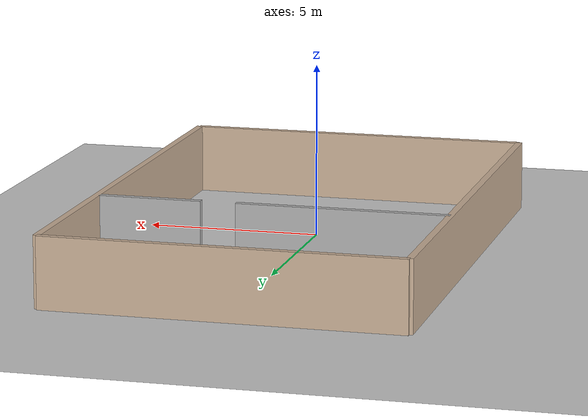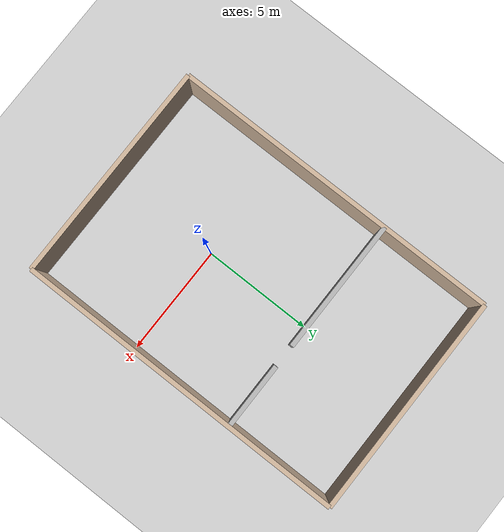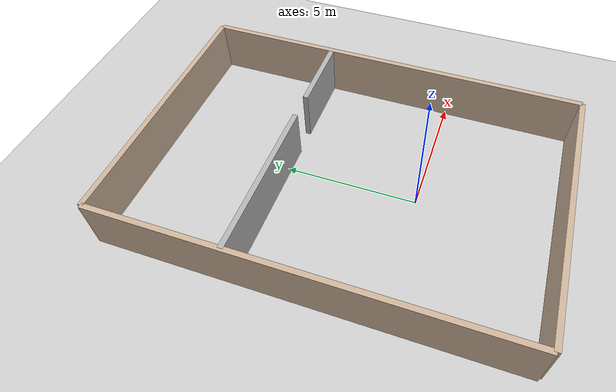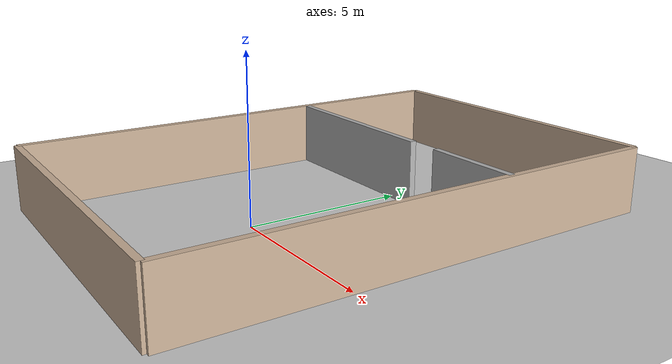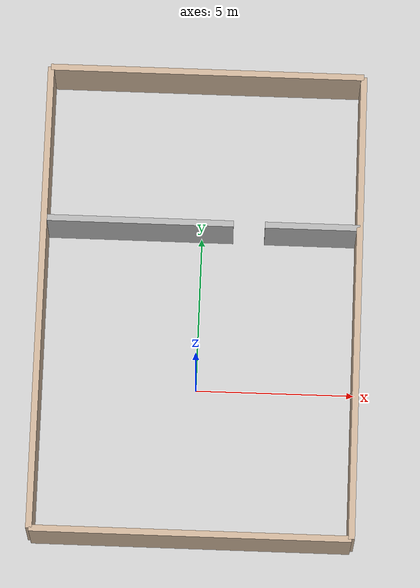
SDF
<?xml version="1.0" ?>
<sdf version="1.4">
  <world name="simple_office">
    <physics type="ode">
      <gravity>0 0 -9.81</gravity>
      <ode>
        <solver>
          <type>quick</type>
          <iters>20</iters>
          <sor>1.0</sor>
        </solver>
        <constraints>
          <cfm>0.0</cfm>
          <erp>0.2</erp>
          <contact_max_correcting_vel>100.0</contact_max_correcting_vel>
          <contact_surface_layer>0.0</contact_surface_layer>
        </constraints>
      </ode>
      <real_time_update_rate>1000</real_time_update_rate>
      <max_step_size>0.001</max_step_size>
    </physics>

    <!-- A global light source -->
    <include>
      <uri>model://sun</uri>
    </include>

    <!-- A ground plane -->
    <include>
      <uri>model://ground_plane</uri>
    </include>

    <!-- Outer walls -->
    <model name="wall_1_model">
      <pose>0 -5 1 0 0 0</pose>
      <static>true</static>
      <link name="wall_1_body">
        <inertial>
          <mass>1.0</mass>
          <inertia>
            <ixx>1.0</ixx>
            <ixy>0.0</ixy>
            <ixz>0.0</ixz>
            <iyy>1.0</iyy>
            <iyz>0.0</iyz>
            <izz>1.0</izz>
          </inertia>
        </inertial>
        <collision name="collision">
          <geometry>
            <box>
              <size>10 0.2 2</size>
            </box>
          </geometry>
        </collision>
        <visual name="visual">
          <geometry>
            <box>
              <size>10 0.2 2</size>
            </box>
          </geometry>
          <material>
            <ambient>0.8 0.7 0.6 1</ambient>
            <diffuse>0.8 0.7 0.6 1</diffuse>
          </material>
        </visual>
      </link>
    </model>

    <model name="wall_2_model">
      <pose>0 10 1 0 0 0</pose>
      <static>true</static>
      <link name="wall_2_body">
        <inertial>
          <mass>1.0</mass>
          <inertia>
            <ixx>1.0</ixx>
            <ixy>0.0</ixy>
            <ixz>0.0</ixz>
            <iyy>1.0</iyy>
            <iyz>0.0</iyz>
            <izz>1.0</izz>
          </inertia>
        </inertial>
        <collision name="collision">
          <geometry>
            <box>
              <size>10 0.2 2</size>
            </box>
          </geometry>
        </collision>
        <visual name="visual">
          <geometry>
            <box>
              <size>10 0.2 2</size>
            </box>
          </geometry>
          <material>
            <ambient>0.8 0.7 0.6 1</ambient>
            <diffuse>0.8 0.7 0.6 1</diffuse>
          </material>
        </visual>
      </link>
    </model>

    <model name="wall_3_model">
      <pose>-5 2.5 1 0 0 0</pose>
      <static>true</static>
      <link name="wall_3_body">
        <inertial>
          <mass>1.0</mass>
          <inertia>
            <ixx>1.0</ixx>
            <ixy>0.0</ixy>
            <ixz>0.0</ixz>
            <iyy>1.0</iyy>
            <iyz>0.0</iyz>
            <izz>1.0</izz>
          </inertia>
        </inertial>
        <collision name="collision">
          <geometry>
            <box>
              <size>0.2 15 2</size>
            </box>
          </geometry>
        </collision>
        <visual name="visual">
          <geometry>
            <box>
              <size>0.2 15 2</size>
            </box>
          </geometry>
          <material>
            <ambient>0.8 0.7 0.6 1</ambient>
            <diffuse>0.8 0.7 0.6 1</diffuse>
          </material>
        </visual>
      </link>
    </model>

    <model name="wall_4_model">
      <pose>5 2.5 1 0 0 0</pose>
      <static>true</static>
      <link name="wall_4_body">
        <inertial>
          <mass>1.0</mass>
          <inertia>
            <ixx>1.0</ixx>
            <ixy>0.0</ixy>
            <ixz>0.0</ixz>
            <iyy>1.0</iyy>
            <iyz>0.0</iyz>
            <izz>1.0</izz>
          </inertia>
        </inertial>
        <collision name="collision">
          <geometry>
            <box>
              <size>0.2 15 2</size>
            </box>
          </geometry>
        </collision>
        <visual name="visual">
          <geometry>
            <box>
              <size>0.2 15 2</size>
            </box>
          </geometry>
          <material>
            <ambient>0.8 0.7 0.6 1</ambient>
            <diffuse>0.8 0.7 0.6 1</diffuse>
          </material>
        </visual>
      </link>
    </model>

    <!-- Interior room dividing walls -->
    <model name="wall_5_model">
      <pose>-2 5 1 0 0 0</pose>
      <static>true</static>
      <link name="wall_5_body">
        <inertial>
          <mass>1.0</mass>
          <inertia>
            <ixx>1.0</ixx>
            <ixy>0.0</ixy>
            <ixz>0.0</ixz>
            <iyy>1.0</iyy>
            <iyz>0.0</iyz>
            <izz>1.0</izz>
          </inertia>
        </inertial>
        <collision name="collision">
          <geometry>
            <box>
              <size>6 0.2 2</size>
            </box>
          </geometry>
        </collision>
        <visual name="visual">
          <geometry>
            <box>
              <size>6 0.2 2</size>
            </box>
          </geometry>
          <material>
            <ambient>0.7 0.7 0.7 1</ambient>
            <diffuse>0.7 0.7 0.7 1</diffuse>
          </material>
        </visual>
      </link>
    </model>

    <model name="wall_6_model">
      <pose>3.5 5 1 0 0 0</pose>
      <static>true</static>
      <link name="wall_6_body">
        <inertial>
          <mass>1.0</mass>
          <inertia>
            <ixx>1.0</ixx>
            <ixy>0.0</ixy>
            <ixz>0.0</ixz>
            <iyy>1.0</iyy>
            <iyz>0.0</iyz>
            <izz>1.0</izz>
          </inertia>
        </inertial>
        <collision name="collision">
          <geometry>
            <box>
              <size>3 0.2 2</size>
            </box>
          </geometry>
        </collision>
        <visual name="visual">
          <geometry>
            <box>
              <size>3 0.2 2</size>
            </box>
          </geometry>
          <material>
            <ambient>0.7 0.7 0.7 1</ambient>
            <diffuse>0.7 0.7 0.7 1</diffuse>
          </material>
        </visual>
      </link>
    </model>

    <!-- Pedsim actor plugin - IMPORTANT for pedestrian simulation -->
    <plugin name="ActorPosesPlugin" filename="libActorPosesPlugin.so"></plugin>

  </world>
</sdf>
